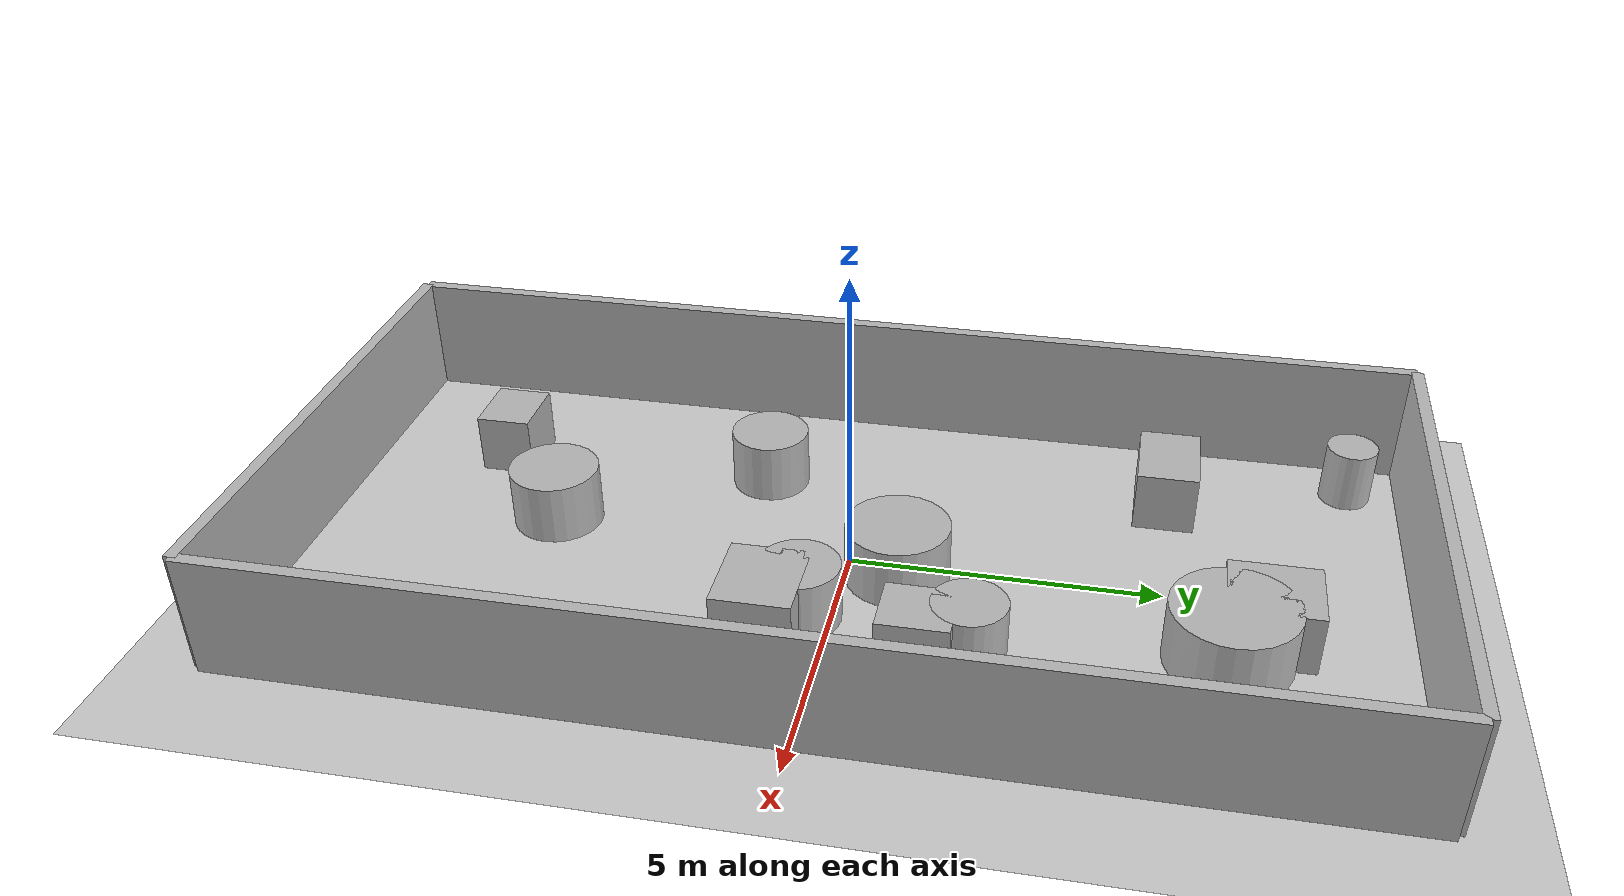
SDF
<?xml version="1.0"?>
<sdf version="1.6">
  <world name="env_90">

    <include><uri>model://ground_plane</uri></include>
    <include><uri>model://sun</uri></include>

    <!-- WALLS -->
    <model name="wall_north"><static>true</static><pose>0 8.892637629547522 1 0 0 0</pose>
      <link name="link"><collision name="collision">
        <geometry><box><size>8.921659134950266 0.2 2</size></box></geometry>
      </collision><visual name="visual">
        <geometry><box><size>8.921659134950266 0.2 2</size></box></geometry>
      </visual></link>
    </model>

    <model name="wall_south"><static>true</static><pose>0 -8.892637629547522 1 0 0 0</pose>
      <link name="link"><collision name="collision">
        <geometry><box><size>8.921659134950266 0.2 2</size></box></geometry>
      </collision><visual name="visual">
        <geometry><box><size>8.921659134950266 0.2 2</size></box></geometry>
      </visual></link>
    </model>

    <model name="wall_east"><static>true</static><pose>4.460829567475133 0 1 0 0 1.57</pose>
      <link name="link"><collision name="collision">
        <geometry><box><size>17.785275259095044 0.2 2</size></box></geometry>
      </collision><visual name="visual">
        <geometry><box><size>17.785275259095044 0.2 2</size></box></geometry>
      </visual></link>
    </model>

    <model name="wall_west"><static>true</static><pose>-4.460829567475133 0 1 0 0 1.57</pose>
      <link name="link"><collision name="collision">
        <geometry><box><size>17.785275259095044 0.2 2</size></box></geometry>
      </collision><visual name="visual">
        <geometry><box><size>17.785275259095044 0.2 2</size></box></geometry>
      </visual></link>
    </model>

    <!-- SENSOR -->

    <model name="lidar_sensor">
      <static>true</static>
      <pose>2.1383479814145323 -7.530789560340429 0.4 0 0 0</pose>
      <link name="link">
        <sensor name="lidar" type="ray">
          <pose>0 0 0 0 0 0</pose>
          <visualize>true</visualize>
          <always_on>true</always_on>
          <update_rate>10</update_rate>
          <ray>
            <scan><horizontal>
              <samples>90</samples>
              <resolution>1</resolution>
              <min_angle>-3.14159</min_angle>
              <max_angle>3.14159</max_angle>
            </horizontal></scan>
            <range><min>0.15</min><max>20.0</max><resolution>0.01</resolution></range>
          </ray>
          <plugin name="lidar_plugin" filename="liblidar_plugin.so"/>
        </sensor>
      </link>
    </model>

    <!-- OBSTACLES -->

    <model name="obstacle_0">
      <static>true</static>
      <pose>-3.499265529672868 7.9509618558601325 0.5 0 0 0</pose>
      <link name="link">
        <collision name="collision">
          <geometry><cylinder><radius>0.42</radius><length>1.0</length></cylinder></geometry>
        </collision>
        <visual name="visual">
          <geometry><cylinder><radius>0.42</radius><length>1.0</length></cylinder></geometry>
        </visual>
      </link>
    </model>

    <model name="obstacle_1">
      <static>true</static>
      <pose>-2.088050131434395 -6.4233132390343215 0.5 0 0 0</pose>
      <link name="link">
        <collision name="collision">
          <geometry><box><size>1.1 0.91 1.0</size></box></geometry>
        </collision>
        <visual name="visual">
          <geometry><box><size>1.1 0.91 1.0</size></box></geometry>
        </visual>
      </link>
    </model>

    <model name="obstacle_2">
      <static>true</static>
      <pose>-2.6102098575062707 4.926732128235114 0.5 0 0 0</pose>
      <link name="link">
        <collision name="collision">
          <geometry><box><size>1.46 1.0 1.0</size></box></geometry>
        </collision>
        <visual name="visual">
          <geometry><box><size>1.46 1.0 1.0</size></box></geometry>
        </visual>
      </link>
    </model>

    <model name="obstacle_3">
      <static>true</static>
      <pose>-2.136912189021923 -1.8062620658126578 0.5 0 0 0</pose>
      <link name="link">
        <collision name="collision">
          <geometry><cylinder><radius>0.65</radius><length>1.0</length></cylinder></geometry>
        </collision>
        <visual name="visual">
          <geometry><cylinder><radius>0.65</radius><length>1.0</length></cylinder></geometry>
        </visual>
      </link>
    </model>

    <model name="obstacle_4">
      <static>true</static>
      <pose>1.9559221428473021 -0.9838580299366413 0.5 0 0 0</pose>
      <link name="link">
        <collision name="collision">
          <geometry><box><size>1.45 1.26 1.0</size></box></geometry>
        </collision>
        <visual name="visual">
          <geometry><box><size>1.45 1.26 1.0</size></box></geometry>
        </visual>
      </link>
    </model>

    <model name="obstacle_5">
      <static>true</static>
      <pose>1.5695171289418655 -0.48133457435881066 0.5 0 0 0</pose>
      <link name="link">
        <collision name="collision">
          <geometry><cylinder><radius>0.65</radius><length>1.0</length></cylinder></geometry>
        </collision>
        <visual name="visual">
          <geometry><cylinder><radius>0.65</radius><length>1.0</length></cylinder></geometry>
        </visual>
      </link>
    </model>

    <model name="obstacle_6">
      <static>true</static>
      <pose>2.0220227581092347 2.1710084175300803 0.5 0 0 0</pose>
      <link name="link">
        <collision name="collision">
          <geometry><cylinder><radius>0.59</radius><length>1.0</length></cylinder></geometry>
        </collision>
        <visual name="visual">
          <geometry><cylinder><radius>0.59</radius><length>1.0</length></cylinder></geometry>
        </visual>
      </link>
    </model>

    <model name="obstacle_7">
      <static>true</static>
      <pose>1.396351573514961 5.98498855681682 0.5 0 0 0</pose>
      <link name="link">
        <collision name="collision">
          <geometry><cylinder><radius>0.99</radius><length>1.0</length></cylinder></geometry>
        </collision>
        <visual name="visual">
          <geometry><cylinder><radius>0.99</radius><length>1.0</length></cylinder></geometry>
        </visual>
      </link>
    </model>

    <model name="obstacle_8">
      <static>true</static>
      <pose>0.2528630271582486 0.8159410571932195 0.5 0 0 0</pose>
      <link name="link">
        <collision name="collision">
          <geometry><cylinder><radius>0.84</radius><length>1.0</length></cylinder></geometry>
        </collision>
        <visual name="visual">
          <geometry><cylinder><radius>0.84</radius><length>1.0</length></cylinder></geometry>
        </visual>
      </link>
    </model>

    <model name="obstacle_9">
      <static>true</static>
      <pose>2.2833788556937993 1.4382746303049636 0.5 0 0 0</pose>
      <link name="link">
        <collision name="collision">
          <geometry><box><size>1.02 1.12 1.0</size></box></geometry>
        </collision>
        <visual name="visual">
          <geometry><box><size>1.02 1.12 1.0</size></box></geometry>
        </visual>
      </link>
    </model>

    <model name="obstacle_10">
      <static>true</static>
      <pose>-0.3210113768364584 -5.045084892251454 0.5 0 0 0</pose>
      <link name="link">
        <collision name="collision">
          <geometry><cylinder><radius>0.74</radius><length>1.0</length></cylinder></geometry>
        </collision>
        <visual name="visual">
          <geometry><cylinder><radius>0.74</radius><length>1.0</length></cylinder></geometry>
        </visual>
      </link>
    </model>

    <model name="obstacle_11">
      <static>true</static>
      <pose>0.8486925672148526 6.568986690266389 0.5 0 0 0</pose>
      <link name="link">
        <collision name="collision">
          <geometry><box><size>1.27 1.43 1.0</size></box></geometry>
        </collision>
        <visual name="visual">
          <geometry><box><size>1.27 1.43 1.0</size></box></geometry>
        </visual>
      </link>
    </model>

  </world>
</sdf>
